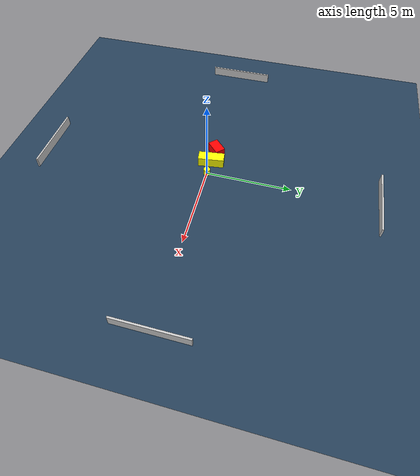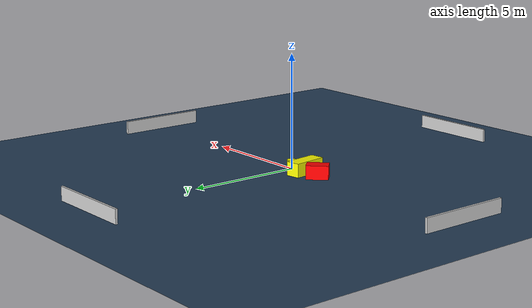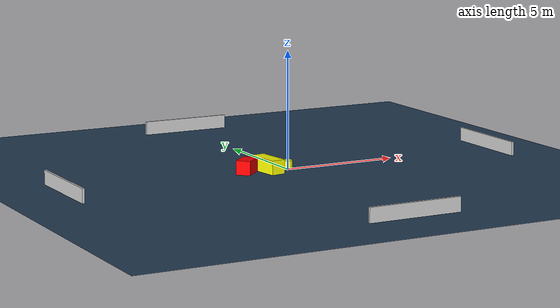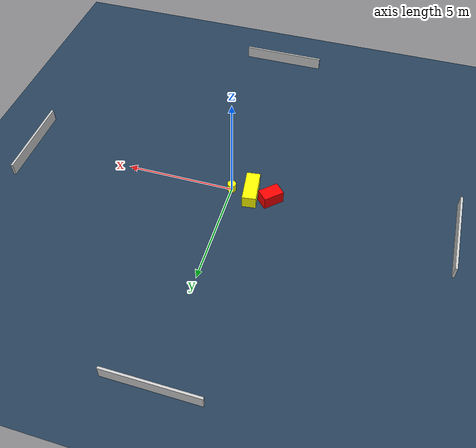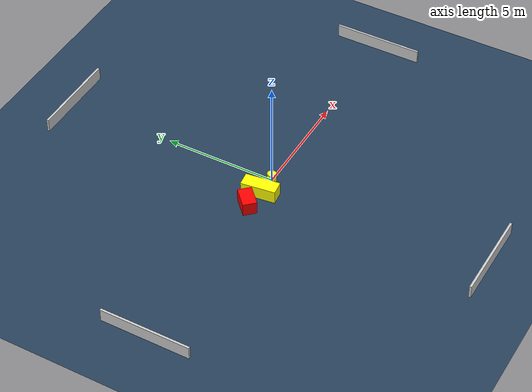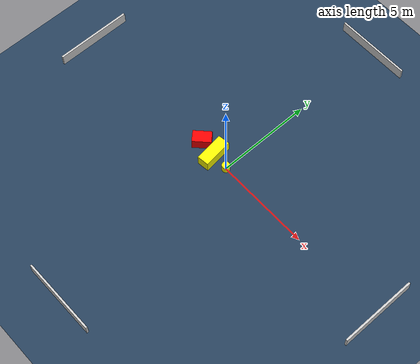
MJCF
<?xml version="1.0" ?>
<mujoco model="generated_environment">
  <option timestep="0.01" integrator="RK4" cone="elliptic"/>
  <default>
    <geom density="1"/>
  </default>
  <asset>
    <texture builtin="gradient" height="3072" name="skybox" rgb1="0.3 0.5 0.7" rgb2="0 0 0" type="skybox" width="512"/>
    <texture builtin="checker" height="300" name="groundplane" rgb1="0.2 0.3 0.4" rgb2="0.1 0.2 0.3" type="2d" width="300"/>
    <material name="groundplane" reflectance="0.2" texrepeat="5 5" texture="groundplane"/>
  </asset>
  <worldbody>
    <light dir="0 0 -1" directional="true" pos="0 0 1.5"/>
    <geom condim="3" friction="0.5 0.005 0.001" material="groundplane" name="floor" pos="0 0 0" size="0 0 0.05" type="plane"/>
    <body name="walls">
      <geom name="wall_1" condim="4" pos="-10.0 0.0 0.3" rgba="0.800000011920929 0.800000011920929 0.800000011920929 1.0" size="0.05 2.0 0.3" type="box"/>
      <geom name="wall_2" condim="4" pos="10.0 0.0 0.3" rgba="0.800000011920929 0.800000011920929 0.800000011920929 1.0" size="0.05 2.0 0.3" type="box"/>
      <geom name="wall_3" condim="4" pos="0.0 -10.0 0.3" rgba="0.800000011920929 0.800000011920929 0.800000011920929 1.0" size="2.0 0.05 0.3" type="box"/>
      <geom name="wall_4" condim="4" pos="0.0 10.0 0.3" rgba="0.800000011920929 0.800000011920929 0.800000011920929 1.0" size="2.0 0.05 0.3" type="box"/>
    </body>
    <body name="robot">
      <joint name="joint_x" type="slide" pos="0 0 0" axis="1 0 0"/>
      <joint name="joint_y" type="slide" pos="0 0 0" axis="0 1 0"/>
      <geom name="robot" type="cylinder" pos="0.0 0.0 0.2" size="0.2 0.2 0.0" mass="5.0" friction="1.0 0.005 0.0001" condim="4" rgba="1.0 1.0 0.0 1.0"/>
    </body>
    <body name="obstacle_1_movable">
      <geom name="obstacle_1_movable" condim="4" pos="-0.923287065265808 0.033802191516280666 0.3" euler="0 0 187.15983712284657" friction="0.0 0.005 0.001" rgba="1.0 1.0 0.0 1.0" size="0.31237262816249367 0.7704368746859853 0.3" type="box" mass="0.1"/>
      <joint type="free"/>
    </body>
    <body name="obstacle_2_static">
      <geom name="obstacle_2_static" condim="4" pos="-1.8565843065867804 0.13208005673510134 0.3" euler="0 0 313.62405366511194" friction="0.0 0.005 0.001" rgba="1.0 0.0 0.0 1.0" size="0.3061316456619494 0.47822953620865105 0.3" type="box"/>
    </body>
  </worldbody>
  <actuator>
    <motor name="actuator_x" joint="joint_x" gear="1" ctrlrange="-1 1"/>
    <motor name="actuator_y" joint="joint_y" gear="1" ctrlrange="-1 1"/>
  </actuator>
</mujoco>
